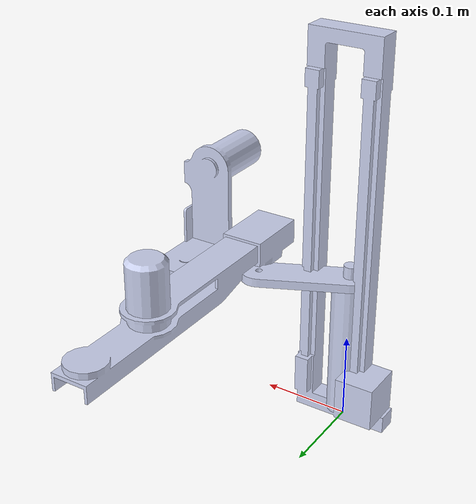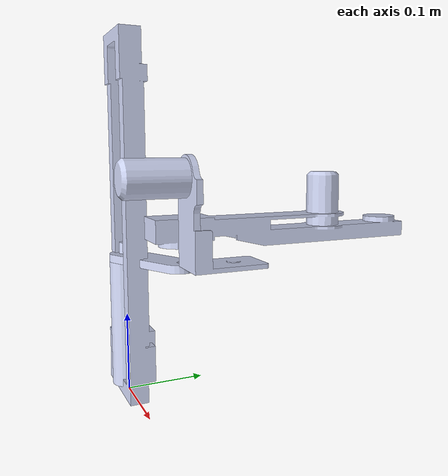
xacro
<?xml version="1.0"?>
<robot xmlns:xacro="http://www.ros.org/wiki/xacro" name="basic_scara">
    <xacro:arg name="initial_positions_file" default="initial_positions.yaml" />

    <!-- Import basic_scara urdf file -->
    <xacro:include filename="$(find scara_description)/urdf/basic_scara.urdf.xacro" />

    <!-- Import control_xacro -->
    <xacro:include filename="basic_scara.ros2_control.xacro" />

    <xacro:basic_scara_ros2_control name="FakeSystem" initial_positions_file="$(arg initial_positions_file)"/>

</robot>

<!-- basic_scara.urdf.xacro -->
<robot xmlns:xacro="http://www.ros.org/wiki/xacro" name="basic_scara">

  <!-- Start GZ or Ignition depending on ROS 2 Version -->
  <xacro:arg name="is_ignition" default="true"/>

  <xacro:include filename="$(find scara_description)/urdf/scara_robot_ros2_control.xacro"/>
  <xacro:include filename="$(find scara_description)/urdf/scara_robot_gazebo.xacro"/>

  <link name="base_link">
    <inertial>
      <origin xyz="0 0 0.00863636363636378" rpy="0 0 0" />
      <mass value="0.0165876092109541" />
      <inertia ixx="2.24517631780113E-06" ixy="1.0034676214386E-38" ixz="-5.37076216211039E-39"
        iyy="2.24517631780113E-06" iyz="-2.49624389024042E-22"
        izz="2.64195375796287E-06" />
    </inertial>
    <visual>
      <origin xyz="0 0 0" rpy="0 0 0" />
      <geometry>
        <mesh filename="package://scara_description/meshes/base_link.STL" />
      </geometry>
      <material name="">
        <color rgba="0.792156862745098 0.819607843137255 0.933333333333333 1" />
      </material>
    </visual>
    <collision>
      <origin xyz="0 0 0" rpy="0 0 0" />
      <geometry>
        <mesh filename="package://scara_description/meshes/base_link.STL" />
      </geometry>
    </collision>
  </link>
  <link name="world"/>
  <joint name="world_joint" type="fixed">
    <parent link="world"/>
    <child link="base_link"/>
    <origin xyz="0 0 0" rpy="0 0 0"/>
  </joint>
  <link name="link1">
    <inertial>
      <origin xyz="1.11022302462516E-16 -2.22044604925031E-16 0.09384" rpy="0 0 0" />
      <mass value="0.201061929829747" />
      <inertia
        ixx="0.000464603398613713" ixy="-3.48947520039849E-21" ixz="5.29714111466896E-21"
        iyy="0.000464603398613713" iyz="-1.01221084819881E-20"
        izz="4.02123859659493E-05" />
    </inertial>
    <visual>
      <origin xyz="0 0 0" rpy="0 0 0" />
      <geometry>
        <mesh filename="package://scara_description/meshes/link1.STL" />
      </geometry>
      <material name="">
        <color rgba="0.792156862745098 0.819607843137255 0.933333333333333 1" />
      </material>
    </visual>
    <collision>
      <origin xyz="0 0 0" rpy="0 0 0" />
      <geometry>
        <mesh filename="package://scara_description/meshes/link1.STL" />
      </geometry>
    </collision>
  </link>
  <joint name="joint1" type="revolute">
    <origin xyz="0 0 0" rpy="0 0 0" />
    <parent link="base_link" />
    <child link="link1" />
    <axis xyz="0 0 1" />
    <limit lower="-3.14" upper="3.14" effort="100" velocity="30" />
  </joint>
  <link name="link2">
    <inertial>
      <origin xyz="0.0466739946420239 0.0217817318210889 -0.00499999999999989" rpy="0 0 0" />
      <mass value="0.0500530964914874" />
      <inertia ixx="1.83624297632003E-05" ixy="-2.44055386408465E-05" ixz="-9.87319939499476E-22"
        iyy="5.92691989087889E-05" iyz="-6.39666860851118E-22"
        izz="7.67974103971311E-05" />
    </inertial>
    <visual>
      <origin xyz="0 0 0" rpy="0 0 0" />
      <geometry>
        <mesh filename="package://scara_description/meshes/link2.STL" />
      </geometry>
      <material name="">
        <color rgba="0.792156862745098 0.819607843137255 0.933333333333333 1" />
      </material>
    </visual>
    <collision>
      <origin xyz="0 0 0" rpy="0 0 0" />
      <geometry>
        <mesh filename="package://scara_description/meshes/link2.STL" />
      </geometry>
    </collision>
  </link>
  <joint name="joint2" type="revolute">
    <origin xyz="0 0 0.18" rpy="0 0 0" />
    <parent link="link1" />
    <child link="link2" />
    <axis xyz="0 0 1" />
    <limit lower="-3.14" upper="3.14" effort="100" velocity="30" />
  </joint>
  <link name="link3">
    <inertial>
      <origin xyz="0.0425450667539482 0.0229442918582774 2.22044604925031E-16" rpy="0 0 0" />
      <mass value="0.0518735868502813" />
      <inertia
        ixx="2.28676056098171E-05" ixy="-2.34103568654531E-05" ixz="-4.02134415261279E-22"
        iyy="5.36518249277037E-05" iyz="-2.72766592988739E-22"
        izz="7.56548707566827E-05" />
    </inertial>
    <visual>
      <origin xyz="0 0 0" rpy="0 0 0" />
      <geometry>
        <mesh filename="package://scara_description/meshes/link3.STL" />
      </geometry>
      <material name="">
        <color rgba="0.792156862745098 0.819607843137255 0.933333333333333 1" />
      </material>
    </visual>
    <collision>
      <origin xyz="0 0 0" rpy="0 0 0" />
      <geometry>
        <mesh filename="package://scara_description/meshes/link3.STL" />
      </geometry>
    </collision>
  </link>
  <joint name="joint3" type="revolute">
    <origin xyz="0.090618 0.042289 0.005" rpy="0 0 0" />
    <parent link="link2" />
    <child link="link3" />
    <axis xyz="0 0 1" />
    <limit lower="-3.14" upper="3.14" effort="100" velocity="30" />
  </joint>
  <link name="link4">
    <inertial>
      <origin xyz="1.11022302462516E-16 0 -0.0688556161912514" rpy="0 0 0" />
      <mass value="0.04337624304553" />
      <inertia
        ixx="6.92518193812981E-05" ixy="-3.41733983807794E-08" ixz="4.44842562470711E-21"
        iyy="6.94328659190728E-05" iyz="-3.62693805346337E-21"
        izz="2.60677788798737E-06" />
    </inertial>
    <visual>
      <origin xyz="0 0 0" rpy="0 0 0" />
      <geometry>
        <mesh filename="package://scara_description/meshes/link4.STL" />
      </geometry>
      <material name="">
        <color rgba="0.792156862745098 0.819607843137255 0.933333333333333 1" />
      </material>
    </visual>
    <collision>
      <origin xyz="0 0 0" rpy="0 0 0" />
      <geometry>
        <mesh filename="package://scara_description/meshes/link4.STL" />
      </geometry>
    </collision>
  </link>
  <joint name="joint4" type="revolute">
    <origin xyz="0.070413 0.037973 0.005" rpy="0 0 0" />
    <parent link="link3" />
    <child link="link4" />
    <axis xyz="0 0 1" />
    <limit lower="-3.14" upper="3.14" effort="100" velocity="30" />
  </joint>
</robot>
